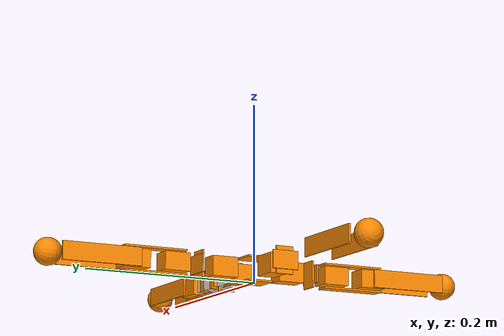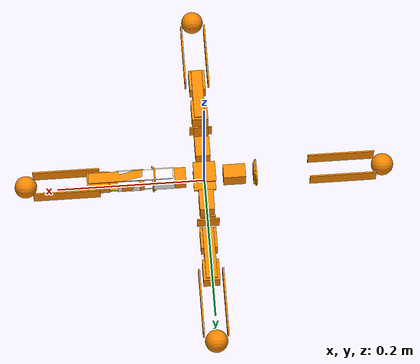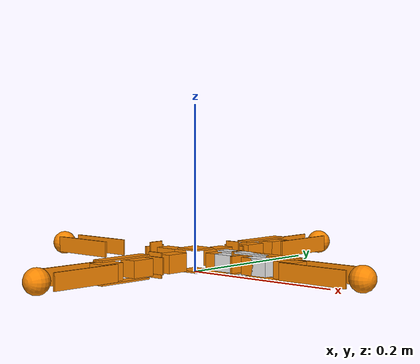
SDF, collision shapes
<sdf version="1.6">
<model name="onshape">
<link name="body_1">
<frame name="body_1_frame"><pose>0 0 0 0 -0 0</pose></frame>
<visual name="body_1_0_body_visual">
<pose>0 0 0 0 -0 0</pose>
<geometry>
<mesh><uri>package://body.stl</uri></mesh>
</geometry>
<material><ambient>0.972549 0.529412 0.00392157 1</ambient><diffuse>0.972549 0.529412 0.00392157 1</diffuse><specular>0.1 0.1 0.1 1</specular><emissive>0 0 0 0</emissive></material>
</visual>
<collision name="body_1_0_body_collision_1">
<pose>0 0 0.0011 0 -0 0</pose>
<geometry>
<box><size>0.03 0.03 0.002</size></box>
</geometry>
</collision>
<visual name="body_1_1_horn_visual">
<pose>3.46945e-18 -0.0485 0.0143 0 -0 1.49355</pose>
<geometry>
<mesh><uri>package://horn.stl</uri></mesh>
</geometry>
<material><ambient>0.917647 0.917647 0.917647 1</ambient><diffuse>0.917647 0.917647 0.917647 1</diffuse><specular>0.1 0.1 0.1 1</specular><emissive>0 0 0 0</emissive></material>
</visual>
<visual name="body_1_2_motor_visual">
<pose>0.0485 4.33681e-18 0.0143 0 -0 -1.5708</pose>
<geometry>
<mesh><uri>package://motor.stl</uri></mesh>
</geometry>
<material><ambient>0.470588 0.470588 0.470588 1</ambient><diffuse>0.470588 0.470588 0.470588 1</diffuse><specular>0.1 0.1 0.1 1</specular><emissive>0 0 0 0</emissive></material>
</visual>
<collision name="body_1_2_motor_collision_1">
<pose>0.0405 4.33681e-18 0.0143 0 -0 -1.5708</pose>
<geometry>
<box><size>0.02 0.03 0.022</size></box>
</geometry>
</collision>
<visual name="body_1_3_motor_visual">
<pose>-0.0485 2.56739e-16 0.0143 6.87729e-22 3.74562e-16 1.5708</pose>
<geometry>
<mesh><uri>package://motor.stl</uri></mesh>
</geometry>
<material><ambient>0.470588 0.470588 0.470588 1</ambient><diffuse>0.470588 0.470588 0.470588 1</diffuse><specular>0.1 0.1 0.1 1</specular><emissive>0 0 0 0</emissive></material>
</visual>
<collision name="body_1_3_motor_collision_1">
<pose>-0.0405 2.57627e-16 0.0143 6.87729e-22 3.74562e-16 1.5708</pose>
<geometry>
<box><size>0.02 0.03 0.022</size></box>
</geometry>
</collision>
<visual name="body_1_4_horn_visual">
<pose>0.0485 -1.94242e-17 0.0143 0 -0 1.45228</pose>
<geometry>
<mesh><uri>package://horn.stl</uri></mesh>
</geometry>
<material><ambient>0.917647 0.917647 0.917647 1</ambient><diffuse>0.917647 0.917647 0.917647 1</diffuse><specular>0.1 0.1 0.1 1</specular><emissive>0 0 0 0</emissive></material>
</visual>
<visual name="body_1_5_horn_visual">
<pose>-0.0485 6.93889e-17 0.0143 0 -0 1.49355</pose>
<geometry>
<mesh><uri>package://horn.stl</uri></mesh>
</geometry>
<material><ambient>0.917647 0.917647 0.917647 1</ambient><diffuse>0.917647 0.917647 0.917647 1</diffuse><specular>0.1 0.1 0.1 1</specular><emissive>0 0 0 0</emissive></material>
</visual>
<visual name="body_1_6_motor_visual">
<pose>-9.54098e-18 0.0485 0.0143 0 -0 8.32667e-16</pose>
<geometry>
<mesh><uri>package://motor.stl</uri></mesh>
</geometry>
<material><ambient>0.470588 0.470588 0.470588 1</ambient><diffuse>0.470588 0.470588 0.470588 1</diffuse><specular>0.1 0.1 0.1 1</specular><emissive>0 0 0 0</emissive></material>
</visual>
<collision name="body_1_6_motor_collision_1">
<pose>-2.87964e-18 0.0405 0.0143 0 -0 8.32667e-16</pose>
<geometry>
<box><size>0.02 0.03 0.022</size></box>
</geometry>
</collision>
<visual name="body_1_7_body_visual">
<pose>0 3.46945e-18 0.0286 3.14159 -0 0</pose>
<geometry>
<mesh><uri>package://body.stl</uri></mesh>
</geometry>
<material><ambient>0.972549 0.529412 0.00392157 1</ambient><diffuse>0.972549 0.529412 0.00392157 1</diffuse><specular>0.1 0.1 0.1 1</specular><emissive>0 0 0 0</emissive></material>
</visual>
<collision name="body_1_7_body_collision_1">
<pose>0 3.46945e-18 0.0275 3.14159 -0 0</pose>
<geometry>
<box><size>0.03 0.03 0.002</size></box>
</geometry>
</collision>
<visual name="body_1_8_motor_visual">
<pose>1.73472e-18 -0.0485 0.0143 0 -0 -3.14159</pose>
<geometry>
<mesh><uri>package://motor.stl</uri></mesh>
</geometry>
<material><ambient>0.470588 0.470588 0.470588 1</ambient><diffuse>0.470588 0.470588 0.470588 1</diffuse><specular>0.1 0.1 0.1 1</specular><emissive>0 0 0 0</emissive></material>
</visual>
<collision name="body_1_8_motor_collision_1">
<pose>1.24486e-18 -0.0405 0.0143 0 -0 -3.14159</pose>
<geometry>
<box><size>0.02 0.03 0.022</size></box>
</geometry>
</collision>
<visual name="body_1_9_horn_visual">
<pose>-9.66308e-18 0.0485 0.0143 0 -0 1.49355</pose>
<geometry>
<mesh><uri>package://horn.stl</uri></mesh>
</geometry>
<material><ambient>0.917647 0.917647 0.917647 1</ambient><diffuse>0.917647 0.917647 0.917647 1</diffuse><specular>0.1 0.1 0.1 1</specular><emissive>0 0 0 0</emissive></material>
</visual>
<inertial>
<pose frame="body_1_frame">-1.59281e-16 6.414e-17 0.0143384 0 0 0</pose>
<mass>0.0808736</mass>
<inertia><ixx>7.37408e-05</ixx><ixy>1.86671e-19</ixy><ixz>-1.67366e-21</ixz><iyy>7.37408e-05</iyy><iyz>-1.90582e-21</iyz><izz>0.000135878</izz></inertia>
</inertial>
</link>

<link name="trunk">
<pose>0 0 0 0 0 0</pose>
<inertial>
<pose>0 0 0 0 0 0</pose>
<mass>1e-9</mass>
<inertia>
<ixx>0</ixx><ixy>0</ixy><ixz>0</ixz><iyy>0</iyy><iyz>0</iyz><izz>0</izz>
</inertia>
</inertial>
</link>
<joint name="trunk_frame" type="floating">
<pose>-1.46437e-18 8.91964e-20 0.0148 0 -0 0</pose>
<parent>body_1</parent>
<child>trunk</child>
</joint>

<link name="doubleu_1">
<frame name="doubleu_1_frame"><pose>0 0 0 0 -0 0</pose></frame>
<visual name="doubleu_1_0_u_visual">
<pose>-0.0665 2.5327e-16 0.01545 -1.5708 3.03402e-16 1.5708</pose>
<geometry>
<mesh><uri>package://u.stl</uri></mesh>
</geometry>
<material><ambient>0.972549 0.529412 0.00392157 1</ambient><diffuse>0.972549 0.529412 0.00392157 1</diffuse><specular>0.1 0.1 0.1 1</specular><emissive>0 0 0 0</emissive></material>
</visual>
<collision name="doubleu_1_0_u_collision_1">
<pose>-0.0676 2.53086e-16 0.01545 -1.5708 3.03402e-16 1.5708</pose>
<geometry>
<box><size>0.02 0.03 0.002</size></box>
</geometry>
</collision>
<visual name="doubleu_1_1_u_visual">
<pose>-0.0711 2.77556e-16 0.01545 -2.22045e-16 1.5708 0</pose>
<geometry>
<mesh><uri>package://u.stl</uri></mesh>
</geometry>
<material><ambient>0.972549 0.529412 0.00392157 1</ambient><diffuse>0.972549 0.529412 0.00392157 1</diffuse><specular>0.1 0.1 0.1 1</specular><emissive>0 0 0 0</emissive></material>
</visual>
<collision name="doubleu_1_1_u_collision_1">
<pose>-0.07 2.778e-16 0.01545 -2.22045e-16 1.5708 0</pose>
<geometry>
<box><size>0.02 0.03 0.002</size></box>
</geometry>
</collision>
<inertial>
<pose frame="doubleu_1_frame">-0.0688 2.69024e-16 0.01545 0 0 0</pose>
<mass>0.00830698</mass>
<inertia><ixx>1.53589e-06</ixx><ixy>1.39891e-21</ixy><ixz>-4.33802e-22</ixz><iyy>2.49451e-06</iyy><iyz>-1.99352e-22</iyz><izz>3.46232e-06</izz></inertia>
</inertial>
</link>

<link name="platesblock_1">
<pose>0.2 0 0 0 0 0</pose>
<frame name="platesblock_1_frame"><pose>0 0 0 0 -0 0</pose></frame>
<visual name="platesblock_1_0_horn_visual">
<pose>-0.1521 2.5327e-16 0.01545 -1.5708 -0.986922 3.14159</pose>
<geometry>
<mesh><uri>package://horn.stl</uri></mesh>
</geometry>
<material><ambient>0.917647 0.917647 0.917647 1</ambient><diffuse>0.917647 0.917647 0.917647 1</diffuse><specular>0.1 0.1 0.1 1</specular><emissive>0 0 0 0</emissive></material>
</visual>
<visual name="platesblock_1_1_horn_visual">
<pose>-0.0891 -2.08167e-17 0.01545 1.5708 1.5708 0</pose>
<geometry>
<mesh><uri>package://horn.stl</uri></mesh>
</geometry>
<material><ambient>0.917647 0.917647 0.917647 1</ambient><diffuse>0.917647 0.917647 0.917647 1</diffuse><specular>0.1 0.1 0.1 1</specular><emissive>0 0 0 0</emissive></material>
</visual>
<visual name="platesblock_1_2_motor_visual">
<pose>-0.1521 -2.04697e-17 0.01545 1.5708 -1.5708 0</pose>
<geometry>
<mesh><uri>package://motor.stl</uri></mesh>
</geometry>
<material><ambient>0.470588 0.470588 0.470588 1</ambient><diffuse>0.470588 0.470588 0.470588 1</diffuse><specular>0.1 0.1 0.1 1</specular><emissive>0 0 0 0</emissive></material>
</visual>
<collision name="platesblock_1_2_motor_collision_1">
<pose>-0.1441 -2.93871e-17 0.01545 1.5708 -1.5708 0</pose>
<geometry>
<box><size>0.02 0.03 0.022</size></box>
</geometry>
</collision>
<visual name="platesblock_1_3_motor_visual">
<pose>-0.0891 -8.67362e-17 0.01545 1.5708 1.5708 0</pose>
<geometry>
<mesh><uri>package://motor.stl</uri></mesh>
</geometry>
<material><ambient>0.470588 0.470588 0.470588 1</ambient><diffuse>0.470588 0.470588 0.470588 1</diffuse><specular>0.1 0.1 0.1 1</specular><emissive>0 0 0 0</emissive></material>
</visual>
<collision name="platesblock_1_3_motor_collision_1">
<pose>-0.0971 -8.66266e-17 0.01545 1.5708 1.5708 0</pose>
<geometry>
<box><size>0.02 0.03 0.022</size></box>
</geometry>
</collision>
<visual name="platesblock_1_4_plate_visual">
<pose>-0.0831 -1.14492e-16 0.00115 1.02716e-15 1.55431e-15 3.14159</pose>
<geometry>
<mesh><uri>package://plate.stl</uri></mesh>
</geometry>
<material><ambient>0.972549 0.529412 0.00392157 1</ambient><diffuse>0.972549 0.529412 0.00392157 1</diffuse><specular>0.1 0.1 0.1 1</specular><emissive>0 0 0 0</emissive></material>
</visual>
<collision name="platesblock_1_4_plate_collision_1">
<pose>-0.1206 -6.77443e-17 0.00235 1.02716e-15 1.55431e-15 3.14159</pose>
<geometry>
<box><size>0.073 0.015 0.002</size></box>
</geometry>
</collision>
<visual name="platesblock_1_5_plate_visual">
<pose>-0.0831 3.46945e-18 0.02745 7.41349e-16 1.38778e-15 3.14159</pose>
<geometry>
<mesh><uri>package://plate.stl</uri></mesh>
</geometry>
<material><ambient>0.972549 0.529412 0.00392157 1</ambient><diffuse>0.972549 0.529412 0.00392157 1</diffuse><specular>0.1 0.1 0.1 1</specular><emissive>0 0 0 0</emissive></material>
</visual>
<collision name="platesblock_1_5_plate_collision_1">
<pose>-0.1206 1.01989e-17 0.02865 7.41349e-16 1.38778e-15 3.14159</pose>
<geometry>
<box><size>0.073 0.015 0.002</size></box>
</geometry>
</collision>
<inertial>
<pose frame="platesblock_1_frame">-0.1206 -3.71788e-05 0.01545 0 0 0</pose>
<mass>0.0417755</mass>
<inertia><ixx>5.63169e-06</ixx><ixy>-5.60048e-09</ixy><ixz>1.86781e-12</ixz><iyy>3.05137e-05</iyy><iyz>-4.68143e-21</iyz><izz>2.82895e-05</izz></inertia>
</inertial>
</link>

<link name="leg_1">
<frame name="leg_1_frame"><pose>0 0 0 0 -0 0</pose></frame>
<visual name="leg_1_0_leg_visual">
<pose>-0.1521 2.60209e-16 0.01545 3.14159 -1.5708 0</pose>
<geometry>
<mesh><uri>package://leg.stl</uri></mesh>
</geometry>
<material><ambient>0.972549 0.529412 0.00392157 1</ambient><diffuse>0.972549 0.529412 0.00392157 1</diffuse><specular>0.1 0.1 0.1 1</specular><emissive>0 0 0 0</emissive></material>
</visual>
<collision name="leg_1_0_leg_collision_1">
<pose>-0.1871 0.016 0.01545 3.14159 -1.5708 0</pose>
<geometry>
<box><size>0.02 0.002 0.09</size></box>
</geometry>
</collision>
<collision name="leg_1_0_leg_collision_2">
<pose>-0.1871 -0.016 0.01545 3.14159 -1.5708 0</pose>
<geometry>
<box><size>0.02 0.002 0.09</size></box>
</geometry>
</collision>
<collision name="leg_1_0_leg_collision_3">
<pose>-0.2421 2.93227e-16 0.01545 3.14159 -1.5708 0</pose>
<geometry>
<sphere><radius>0.015</radius></sphere>
</geometry>
</collision>
<inertial>
<pose frame="leg_1_frame">-0.205479 2.94423e-16 0.01545 0 0 0</pose>
<mass>0.0154162</mass>
<inertia><ixx>3.58407e-06</ixx><ixy>-6.36999e-22</ixy><ixz>5.5435e-21</ixz><iyy>1.88204e-05</iyy><iyz>-1.43334e-21</iyz><izz>2.13816e-05</izz></inertia>
</inertial>
</link>

<joint name="leg1_c" type="revolute">
<pose>-0.1521 0.015 0.01545 3.14159 -1.5708 0</pose>
<parent>platesblock_1</parent>
<child>leg_1</child>
<axis>
<xyz>0 1 0</xyz>
<limit><effort>1</effort><velocity>20</velocity></limit>
</axis>
</joint>

<joint name="leg1_b" type="revolute">
<pose>-0.0891 0.015 0.01545 1.5708 1.5708 0</pose>
<parent>doubleu_1</parent>
<child>platesblock_1</child>
<axis>
<xyz>0 0 1</xyz>
<limit><effort>1</effort><velocity>20</velocity></limit>
</axis>
</joint>

<joint name="leg1_a" type="revolute">
<pose>-0.0485 2.51367e-16 -0.0007 -1.5708 3.03402e-16 1.5708</pose>
<parent>body_1</parent>
<child>doubleu_1</child>
<axis>
<xyz>0 1 0</xyz>
<limit><effort>1</effort><velocity>20</velocity></limit>
</axis>
</joint>

<link name="doubleu_2">
<frame name="doubleu_2_frame"><pose>0 0 0 0 -0 0</pose></frame>
<visual name="doubleu_2_0_u_visual">
<pose>-3.03577e-18 -0.0665 0.0143 -1.5708 5.02497e-24 -3.14159</pose>
<geometry>
<mesh><uri>package://u.stl</uri></mesh>
</geometry>
<material><ambient>0.972549 0.529412 0.00392157 1</ambient><diffuse>0.972549 0.529412 0.00392157 1</diffuse><specular>0.1 0.1 0.1 1</specular><emissive>0 0 0 0</emissive></material>
</visual>
<collision name="doubleu_2_0_u_collision_1">
<pose>-2.98997e-18 -0.0676 0.0143 -1.5708 5.02497e-24 -3.14159</pose>
<geometry>
<box><size>0.02 0.03 0.002</size></box>
</geometry>
</collision>
<visual name="doubleu_2_1_u_visual">
<pose>-6.57027e-17 -0.0711 0.0143 -1.5708 1.5708 0</pose>
<geometry>
<mesh><uri>package://u.stl</uri></mesh>
</geometry>
<material><ambient>0.972549 0.529412 0.00392157 1</ambient><diffuse>0.972549 0.529412 0.00392157 1</diffuse><specular>0.1 0.1 0.1 1</specular><emissive>0 0 0 0</emissive></material>
</visual>
<collision name="doubleu_2_1_u_collision_1">
<pose>-6.57637e-17 -0.07 0.0143 -1.5708 1.5708 0</pose>
<geometry>
<box><size>0.02 0.03 0.002</size></box>
</geometry>
</collision>
<inertial>
<pose frame="doubleu_2_frame">-3.81567e-17 -0.0688 0.0143 0 0 0</pose>
<mass>0.00830698</mass>
<inertia><ixx>3.17322e-06</ixx><ixy>-2.96433e-21</ixy><ixz>-1.23602e-23</ixz><iyy>2.2146e-06</iyy><iyz>5.14452e-23</iyz><izz>2.1049e-06</izz></inertia>
</inertial>
</link>

<link name="platesblock_2">
<frame name="platesblock_2_frame"><pose>0 0 0 0 -0 0</pose></frame>
<visual name="platesblock_2_0_plate_visual">
<pose>3.68195e-16 -0.0831 0.0263 1.93307e-16 5.54916e-17 -1.5708</pose>
<geometry>
<mesh><uri>package://plate.stl</uri></mesh>
</geometry>
<material><ambient>0.972549 0.529412 0.00392157 1</ambient><diffuse>0.972549 0.529412 0.00392157 1</diffuse><specular>0.1 0.1 0.1 1</specular><emissive>0 0 0 0</emissive></material>
</visual>
<collision name="platesblock_2_0_plate_collision_1">
<pose>4.26687e-16 -0.1206 0.0275 1.93307e-16 5.54916e-17 -1.5708</pose>
<geometry>
<box><size>0.073 0.015 0.002</size></box>
</geometry>
</collision>
<visual name="platesblock_2_1_plate_visual">
<pose>1.97758e-16 -0.0831 -1.55084e-15 3.54195e-16 8.32648e-16 -1.5708</pose>
<geometry>
<mesh><uri>package://plate.stl</uri></mesh>
</geometry>
<material><ambient>0.972549 0.529412 0.00392157 1</ambient><diffuse>0.972549 0.529412 0.00392157 1</diffuse><specular>0.1 0.1 0.1 1</specular><emissive>0 0 0 0</emissive></material>
</visual>
<collision name="platesblock_2_1_plate_collision_1">
<pose>1.61795e-16 -0.1206 0.0012 3.54195e-16 8.32648e-16 -1.5708</pose>
<geometry>
<box><size>0.073 0.015 0.002</size></box>
</geometry>
</collision>
<visual name="platesblock_2_2_horn_visual">
<pose>3.21488e-16 -0.1521 0.0143 -1.5708 -1.26624 -1.5708</pose>
<geometry>
<mesh><uri>package://horn.stl</uri></mesh>
</geometry>
<material><ambient>0.917647 0.917647 0.917647 1</ambient><diffuse>0.917647 0.917647 0.917647 1</diffuse><specular>0.1 0.1 0.1 1</specular><emissive>0 0 0 0</emissive></material>
</visual>
<visual name="platesblock_2_3_horn_visual">
<pose>1.77375e-16 -0.0891 0.0143 1.5708 -3.00181e-16 1.5708</pose>
<geometry>
<mesh><uri>package://horn.stl</uri></mesh>
</geometry>
<material><ambient>0.917647 0.917647 0.917647 1</ambient><diffuse>0.917647 0.917647 0.917647 1</diffuse><specular>0.1 0.1 0.1 1</specular><emissive>0 0 0 0</emissive></material>
</visual>
<visual name="platesblock_2_4_motor_visual">
<pose>3.04574e-16 -0.1521 0.0143 3.14159 -1.5708 0</pose>
<geometry>
<mesh><uri>package://motor.stl</uri></mesh>
</geometry>
<material><ambient>0.470588 0.470588 0.470588 1</ambient><diffuse>0.470588 0.470588 0.470588 1</diffuse><specular>0.1 0.1 0.1 1</specular><emissive>0 0 0 0</emissive></material>
</visual>
<collision name="platesblock_2_4_motor_collision_1">
<pose>3.28814e-16 -0.1441 0.0143 3.14159 -1.5708 0</pose>
<geometry>
<box><size>0.02 0.03 0.022</size></box>
</geometry>
</collision>
<visual name="platesblock_2_5_motor_visual">
<pose>1.82146e-16 -0.0891 0.0143 -1.66533e-16 1.5708 0</pose>
<geometry>
<mesh><uri>package://motor.stl</uri></mesh>
</geometry>
<material><ambient>0.470588 0.470588 0.470588 1</ambient><diffuse>0.470588 0.470588 0.470588 1</diffuse><specular>0.1 0.1 0.1 1</specular><emissive>0 0 0 0</emissive></material>
</visual>
<collision name="platesblock_2_5_motor_collision_1">
<pose>1.74596e-16 -0.0971 0.0143 -1.66533e-16 1.5708 0</pose>
<geometry>
<box><size>0.02 0.03 0.022</size></box>
</geometry>
</collision>
<inertial>
<pose frame="platesblock_2_frame">3.71788e-05 -0.1206 0.0143 0 0 0</pose>
<mass>0.0417755</mass>
<inertia><ixx>2.99696e-05</ixx><ixy>1.23769e-07</ixy><ixz>-1.21995e-20</ixz><iyy>4.63737e-06</iyy><iyz>1.86781e-12</iyz><izz>2.98279e-05</izz></inertia>
</inertial>
</link>

<link name="leg_2">
<frame name="leg_2_frame"><pose>1 0 0 0 -0 0</pose></frame>
<visual name="leg_2_0_leg_visual">
<pose>1.82276e-16 -0.1521 0.0143 -1.5708 -1.5708 0</pose>
<geometry>
<mesh><uri>package://leg.stl</uri></mesh>
</geometry>
<material><ambient>0.972549 0.529412 0.00392157 1</ambient><diffuse>0.972549 0.529412 0.00392157 1</diffuse><specular>0.1 0.1 0.1 1</specular><emissive>0 0 0 0</emissive></material>
</visual>
<collision name="leg_2_0_leg_collision_1">
<pose>-0.016 -0.1871 0.0143 -1.5708 -1.5708 0</pose>
<geometry>
<box><size>0.02 0.002 0.09</size></box>
</geometry>
</collision>
<collision name="leg_2_0_leg_collision_2">
<pose>0.016 -0.1871 0.0143 -1.5708 -1.5708 0</pose>
<geometry>
<box><size>0.02 0.002 0.09</size></box>
</geometry>
</collision>
<collision name="leg_2_0_leg_collision_3">
<pose>5.1126e-16 -0.2421 0.0143 -1.5708 -1.5708 0</pose>
<geometry>
<sphere><radius>0.015</radius></sphere>
</geometry>
</collision>
<inertial>
<pose frame="leg_2_frame">3.62764e-16 -0.205479 0.0143 0 0 0</pose>
<mass>0.0154162</mass>
<inertia><ixx>3.58407e-06</ixx><ixy>-1.31196e-20</ixy><ixz>6.92902e-21</ixz><iyy>2.13816e-05</iyy><iyz>-1.36228e-19</iyz><izz>1.88204e-05</izz></inertia>
</inertial>
</link>

<joint name="leg2_c" type="revolute">
<pose>-0.015 -0.1521 0.0143 -1.5708 -1.5708 0</pose>
<parent>platesblock_2</parent>
<child>leg_2</child>
<axis>
<xyz>0 1 0</xyz>
<limit><effort>1</effort><velocity>20</velocity></limit>
</axis>
</joint>

<joint name="leg2_b" type="revolute">
<pose>-0.015 -0.0891 0.0143 1.5708 -3.00181e-16 1.5708</pose>
<parent>doubleu_2</parent>
<child>platesblock_2</child>
<axis>
<xyz>0 0 1</xyz>
<limit><effort>1</effort><velocity>20</velocity></limit>
</axis>
</joint>

<joint name="leg2_a" type="revolute">
<pose>-3.78517e-18 -0.0485 -0.0007 -1.5708 5.02497e-24 -3.14159</pose>
<parent>body_1</parent>
<child>doubleu_2</child>
<axis>
<xyz>0 1 0</xyz>
<limit><effort>1</effort><velocity>20</velocity></limit>
</axis>
</joint>

<link name="doubleu_3">
<frame name="doubleu_3_frame"><pose>0 0 0 0 -0 0</pose></frame>
<visual name="doubleu_3_0_u_visual">
<pose>0.0711 1.21431e-17 0.01545 -6.11483e-32 -1.5708 0</pose>
<geometry>
<mesh><uri>package://u.stl</uri></mesh>
</geometry>
<material><ambient>0.972549 0.529412 0.00392157 1</ambient><diffuse>0.972549 0.529412 0.00392157 1</diffuse><specular>0.1 0.1 0.1 1</specular><emissive>0 0 0 0</emissive></material>
</visual>
<collision name="doubleu_3_0_u_collision_1">
<pose>0.07 1.21431e-17 0.01545 -6.11483e-32 -1.5708 0</pose>
<geometry>
<box><size>0.02 0.03 0.002</size></box>
</geometry>
</collision>
<visual name="doubleu_3_1_u_visual">
<pose>0.0665 5.20417e-18 0.01545 1.5708 -4.93038e-32 1.5708</pose>
<geometry>
<mesh><uri>package://u.stl</uri></mesh>
</geometry>
<material><ambient>0.972549 0.529412 0.00392157 1</ambient><diffuse>0.972549 0.529412 0.00392157 1</diffuse><specular>0.1 0.1 0.1 1</specular><emissive>0 0 0 0</emissive></material>
</visual>
<collision name="doubleu_3_1_u_collision_1">
<pose>0.0676 5.20417e-18 0.01545 1.5708 -4.93038e-32 1.5708</pose>
<geometry>
<box><size>0.02 0.03 0.002</size></box>
</geometry>
</collision>
<inertial>
<pose frame="doubleu_3_frame">0.0688 1.25197e-17 0.01545 0 0 0</pose>
<mass>0.00830698</mass>
<inertia><ixx>1.53589e-06</ixx><ixy>-1.98875e-22</ixy><ixz>-3.87004e-22</ixz><iyy>2.49451e-06</iyy><iyz>1.73729e-23</iyz><izz>3.46232e-06</izz></inertia>
</inertial>
</link>

<link name="platesblock_3">
<frame name="platesblock_3_frame"><pose>0 0 0 0 -0 0</pose></frame>
<visual name="platesblock_3_0_plate_visual">
<pose>0.0831 -2.22045e-16 0.02745 1.04043e-15 -8.88178e-16 -6.93889e-17</pose>
<geometry>
<mesh><uri>package://plate.stl</uri></mesh>
</geometry>
<material><ambient>0.972549 0.529412 0.00392157 1</ambient><diffuse>0.972549 0.529412 0.00392157 1</diffuse><specular>0.1 0.1 0.1 1</specular><emissive>0 0 0 0</emissive></material>
</visual>
<collision name="platesblock_3_0_plate_collision_1">
<pose>0.1206 -2.2587e-16 0.02865 1.04043e-15 -8.88178e-16 -6.93889e-17</pose>
<geometry>
<box><size>0.073 0.015 0.002</size></box>
</geometry>
</collision>
<visual name="platesblock_3_1_motor_visual">
<pose>0.1521 -2.89699e-17 0.01545 -1.5708 -1.5708 0</pose>
<geometry>
<mesh><uri>package://motor.stl</uri></mesh>
</geometry>
<material><ambient>0.470588 0.470588 0.470588 1</ambient><diffuse>0.470588 0.470588 0.470588 1</diffuse><specular>0.1 0.1 0.1 1</specular><emissive>0 0 0 0</emissive></material>
</visual>
<collision name="platesblock_3_1_motor_collision_1">
<pose>0.1441 -3.87028e-17 0.01545 -1.5708 -1.5708 0</pose>
<geometry>
<box><size>0.02 0.03 0.022</size></box>
</geometry>
</collision>
<visual name="platesblock_3_2_motor_visual">
<pose>0.0891 -1.9082e-17 0.01545 -1.5708 1.5708 0</pose>
<geometry>
<mesh><uri>package://motor.stl</uri></mesh>
</geometry>
<material><ambient>0.470588 0.470588 0.470588 1</ambient><diffuse>0.470588 0.470588 0.470588 1</diffuse><specular>0.1 0.1 0.1 1</specular><emissive>0 0 0 0</emissive></material>
</visual>
<collision name="platesblock_3_2_motor_collision_1">
<pose>0.0971 -1.77497e-17 0.01545 -1.5708 1.5708 0</pose>
<geometry>
<box><size>0.02 0.03 0.022</size></box>
</geometry>
</collision>
<visual name="platesblock_3_3_horn_visual">
<pose>0.1521 -1.42247e-17 0.01545 -1.5708 -0.0772446 1.41089e-15</pose>
<geometry>
<mesh><uri>package://horn.stl</uri></mesh>
</geometry>
<material><ambient>0.917647 0.917647 0.917647 1</ambient><diffuse>0.917647 0.917647 0.917647 1</diffuse><specular>0.1 0.1 0.1 1</specular><emissive>0 0 0 0</emissive></material>
</visual>
<visual name="platesblock_3_4_plate_visual">
<pose>0.0831 6.93889e-18 0.00115 4.64812e-16 1.66533e-16 -5.41234e-16</pose>
<geometry>
<mesh><uri>package://plate.stl</uri></mesh>
</geometry>
<material><ambient>0.972549 0.529412 0.00392157 1</ambient><diffuse>0.972549 0.529412 0.00392157 1</diffuse><specular>0.1 0.1 0.1 1</specular><emissive>0 0 0 0</emissive></material>
</visual>
<collision name="platesblock_3_4_plate_collision_1">
<pose>0.1206 -1.39043e-17 0.00235 4.64812e-16 1.66533e-16 -5.41234e-16</pose>
<geometry>
<box><size>0.073 0.015 0.002</size></box>
</geometry>
</collision>
<visual name="platesblock_3_5_horn_visual">
<pose>0.0891 1.00614e-16 0.01545 1.5708 -2.38367e-17 -3.14159</pose>
<geometry>
<mesh><uri>package://horn.stl</uri></mesh>
</geometry>
<material><ambient>0.917647 0.917647 0.917647 1</ambient><diffuse>0.917647 0.917647 0.917647 1</diffuse><specular>0.1 0.1 0.1 1</specular><emissive>0 0 0 0</emissive></material>
</visual>
<inertial>
<pose frame="platesblock_3_frame">0.1206 3.71788e-05 0.01545 0 0 0</pose>
<mass>0.0417755</mass>
<inertia><ixx>5.61111e-06</ixx><ixy>-9.37348e-10</ixy><ixz>-1.86781e-12</ixz><iyy>3.05342e-05</iyy><iyz>7.78364e-21</iyz><izz>2.82895e-05</izz></inertia>
</inertial>
</link>

<link name="leg_3">
<frame name="leg_3_frame"><pose>0 0 0 0 -0 0</pose></frame>
<visual name="leg_3_0_leg_visual">
<pose>0.1521 -5.75928e-17 0.01545 1.39792e-15 -1.5708 0</pose>
<geometry>
<mesh><uri>package://leg.stl</uri></mesh>
</geometry>
<material><ambient>0.972549 0.529412 0.00392157 1</ambient><diffuse>0.972549 0.529412 0.00392157 1</diffuse><specular>0.1 0.1 0.1 1</specular><emissive>0 0 0 0</emissive></material>
</visual>
<collision name="leg_3_0_leg_collision_1">
<pose>0.1871 -0.016 0.01545 1.39792e-15 -1.5708 0</pose>
<geometry>
<box><size>0.02 0.002 0.09</size></box>
</geometry>
</collision>
<collision name="leg_3_0_leg_collision_2">
<pose>0.1871 0.016 0.01545 1.39792e-15 -1.5708 0</pose>
<geometry>
<box><size>0.02 0.002 0.09</size></box>
</geometry>
</collision>
<collision name="leg_3_0_leg_collision_3">
<pose>0.2421 6.82203e-17 0.01545 1.39792e-15 -1.5708 0</pose>
<geometry>
<sphere><radius>0.015</radius></sphere>
</geometry>
</collision>
<inertial>
<pose frame="leg_3_frame">0.205479 2.39557e-18 0.01545 0 0 0</pose>
<mass>0.0154162</mass>
<inertia><ixx>3.58407e-06</ixx><ixy>-9.57745e-21</ixy><ixz>1.78406e-20</ixz><iyy>1.88204e-05</iyy><iyz>8.90741e-22</iyz><izz>2.13816e-05</izz></inertia>
</inertial>
</link>

<link name="tip">
<pose>0 0 0 0 0 0</pose>
<inertial>
<pose>0 0 0 0 0 0</pose>
<mass>1e-9</mass>
<inertia>
<ixx>0</ixx><ixy>0</ixy><ixz>0</ixz><iyy>0</iyy><iyz>0</iyz><izz>0</izz>
</inertia>
</inertial>
</link>
<joint name="tip_frame" type="floating">
<pose>0.2526 8.63986e-17 0.01795 4.51646e-16 3.10862e-15 1.39792e-15</pose>
<parent>leg_3</parent>
<child>tip</child>
</joint>

<joint name="leg3_c" type="revolute">
<pose>0.1521 -0.015 0.01545 1.39792e-15 -1.5708 0</pose>
<parent>platesblock_3</parent>
<child>leg_3</child>
<axis>
<xyz>0 1 0</xyz>
<limit><effort>1</effort><velocity>20</velocity></limit>
</axis>
</joint>

<joint name="leg3_b" type="revolute">
<pose>0.0891 -0.015 0.01545 1.5708 -2.38367e-17 -3.14159</pose>
<parent>doubleu_3</parent>
<child>platesblock_3</child>
<axis>
<xyz>0 0 1</xyz>
<limit><effort>1</effort><velocity>20</velocity></limit>
</axis>
</joint>

<joint name="leg3_a" type="revolute">
<pose>0.0485 5.20417e-18 -0.0007 1.5708 -4.93038e-32 1.5708</pose>
<parent>body_1</parent>
<child>doubleu_3</child>
<axis>
<xyz>0 -1 0</xyz>
<limit><effort>1</effort><velocity>20</velocity></limit>
</axis>
</joint>

<link name="doubleu_4">
<frame name="doubleu_4_frame"><pose>0 0 0 0 -0 0</pose></frame>
<visual name="doubleu_4_0_u_visual">
<pose>-2.47198e-17 0.0665 0.01545 1.5708 5.00173e-19 -3.14159</pose>
<geometry>
<mesh><uri>package://u.stl</uri></mesh>
</geometry>
<material><ambient>0.972549 0.529412 0.00392157 1</ambient><diffuse>0.972549 0.529412 0.00392157 1</diffuse><specular>0.1 0.1 0.1 1</specular><emissive>0 0 0 0</emissive></material>
</visual>
<collision name="doubleu_4_0_u_collision_1">
<pose>-2.56357e-17 0.0676 0.01545 1.5708 5.00173e-19 -3.14159</pose>
<geometry>
<box><size>0.02 0.03 0.002</size></box>
</geometry>
</collision>
<visual name="doubleu_4_1_u_visual">
<pose>-6.93889e-17 0.0711 0.01545 1.5708 -1.5708 0</pose>
<geometry>
<mesh><uri>package://u.stl</uri></mesh>
</geometry>
<material><ambient>0.972549 0.529412 0.00392157 1</ambient><diffuse>0.972549 0.529412 0.00392157 1</diffuse><specular>0.1 0.1 0.1 1</specular><emissive>0 0 0 0</emissive></material>
</visual>
<collision name="doubleu_4_1_u_collision_1">
<pose>-6.84883e-17 0.07 0.01545 1.5708 -1.5708 0</pose>
<geometry>
<box><size>0.02 0.03 0.002</size></box>
</geometry>
</collision>
<inertial>
<pose frame="doubleu_4_frame">-5.08419e-17 0.0688 0.01545 0 0 0</pose>
<mass>0.00830698</mass>
<inertia><ixx>3.17322e-06</ixx><ixy>2.56001e-21</ixy><ixz>5.96951e-22</ixz><iyy>2.2146e-06</iyy><iyz>-8.41455e-22</iyz><izz>2.1049e-06</izz></inertia>
</inertial>
</link>

<link name="platesblock_4">
<frame name="platesblock_4_frame"><pose>0 0 0 0 -0 0</pose></frame>
<visual name="platesblock_4_0_plate_visual">
<pose>0.0015 0.0831 0.02745 9.72814e-16 -6.77544e-21 1.5708</pose>
<geometry>
<mesh><uri>package://plate.stl</uri></mesh>
</geometry>
<material><ambient>0.972549 0.529412 0.00392157 1</ambient><diffuse>0.972549 0.529412 0.00392157 1</diffuse><specular>0.1 0.1 0.1 1</specular><emissive>0 0 0 0</emissive></material>
</visual>
<collision name="platesblock_4_0_plate_collision_1">
<pose>0.0015 0.1206 0.02865 9.72814e-16 -6.77544e-21 1.5708</pose>
<geometry>
<box><size>0.073 0.015 0.002</size></box>
</geometry>
</collision>
<visual name="platesblock_4_1_plate_visual">
<pose>0.0015 0.0831 0.00115 3.77624e-16 -6.10629e-16 1.5708</pose>
<geometry>
<mesh><uri>package://plate.stl</uri></mesh>
</geometry>
<material><ambient>0.972549 0.529412 0.00392157 1</ambient><diffuse>0.972549 0.529412 0.00392157 1</diffuse><specular>0.1 0.1 0.1 1</specular><emissive>0 0 0 0</emissive></material>
</visual>
<collision name="platesblock_4_1_plate_collision_1">
<pose>0.0015 0.1206 0.00235 3.77624e-16 -6.10629e-16 1.5708</pose>
<geometry>
<box><size>0.073 0.015 0.002</size></box>
</geometry>
</collision>
<visual name="platesblock_4_2_horn_visual">
<pose>0.0015 0.0891 0.01545 1.5708 -3.1145e-16 -1.5708</pose>
<geometry>
<mesh><uri>package://horn.stl</uri></mesh>
</geometry>
<material><ambient>0.917647 0.917647 0.917647 1</ambient><diffuse>0.917647 0.917647 0.917647 1</diffuse><specular>0.1 0.1 0.1 1</specular><emissive>0 0 0 0</emissive></material>
</visual>
<visual name="platesblock_4_3_horn_visual">
<pose>0.0015 0.1521 0.01545 -1.5708 1.3082 1.5708</pose>
<geometry>
<mesh><uri>package://horn.stl</uri></mesh>
</geometry>
<material><ambient>0.917647 0.917647 0.917647 1</ambient><diffuse>0.917647 0.917647 0.917647 1</diffuse><specular>0.1 0.1 0.1 1</specular><emissive>0 0 0 0</emissive></material>
</visual>
<visual name="platesblock_4_4_motor_visual">
<pose>0.0015 0.0891 0.01545 -3.14159 1.5708 0</pose>
<geometry>
<mesh><uri>package://motor.stl</uri></mesh>
</geometry>
<material><ambient>0.470588 0.470588 0.470588 1</ambient><diffuse>0.470588 0.470588 0.470588 1</diffuse><specular>0.1 0.1 0.1 1</specular><emissive>0 0 0 0</emissive></material>
</visual>
<collision name="platesblock_4_4_motor_collision_1">
<pose>0.0015 0.0971 0.01545 -3.14159 1.5708 0</pose>
<geometry>
<box><size>0.02 0.03 0.022</size></box>
</geometry>
</collision>
<visual name="platesblock_4_5_motor_visual">
<pose>0.0015 0.1521 0.01545 -2.21582e-15 -1.5708 0</pose>
<geometry>
<mesh><uri>package://motor.stl</uri></mesh>
</geometry>
<material><ambient>0.470588 0.470588 0.470588 1</ambient><diffuse>0.470588 0.470588 0.470588 1</diffuse><specular>0.1 0.1 0.1 1</specular><emissive>0 0 0 0</emissive></material>
</visual>
<collision name="platesblock_4_5_motor_collision_1">
<pose>0.0015 0.1441 0.01545 -2.21582e-15 -1.5708 0</pose>
<geometry>
<box><size>0.02 0.03 0.022</size></box>
</geometry>
</collision>
<inertial>
<pose frame="platesblock_4_frame">0.00146282 0.1206 0.01545 0 0 0</pose>
<mass>0.0417755</mass>
<inertia><ixx>2.99698e-05</ixx><ixy>-1.242e-07</ixy><ixz>1.55842e-22</ixz><iyy>4.6371e-06</iyy><iyz>-1.86781e-12</iyz><izz>2.98279e-05</izz></inertia>
</inertial>
</link>

<link name="leg_4">
<frame name="leg_4_frame"><pose>0 0 0 0 -0 0</pose></frame>
<visual name="leg_4_0_leg_visual">
<pose>0.0015 0.1521 0.01545 1.5708 1.5708 0</pose>
<geometry>
<mesh><uri>package://leg.stl</uri></mesh>
</geometry>
<material><ambient>0.972549 0.529412 0.00392157 1</ambient><diffuse>0.972549 0.529412 0.00392157 1</diffuse><specular>0.1 0.1 0.1 1</specular><emissive>0 0 0 0</emissive></material>
</visual>
<collision name="leg_4_0_leg_collision_1">
<pose>-0.0145 0.1871 0.01545 1.5708 1.5708 0</pose>
<geometry>
<box><size>0.02 0.002 0.09</size></box>
</geometry>
</collision>
<collision name="leg_4_0_leg_collision_2">
<pose>0.0175 0.1871 0.01545 1.5708 1.5708 0</pose>
<geometry>
<box><size>0.02 0.002 0.09</size></box>
</geometry>
</collision>
<collision name="leg_4_0_leg_collision_3">
<pose>0.0015 0.2421 0.01545 1.5708 1.5708 0</pose>
<geometry>
<sphere><radius>0.015</radius></sphere>
</geometry>
</collision>
<inertial>
<pose frame="leg_4_frame">0.0015 0.205479 0.01545 0 0 0</pose>
<mass>0.0154162</mass>
<inertia><ixx>3.58407e-06</ixx><ixy>-6.37727e-21</ixy><ixz>4.8891e-21</ixz><iyy>2.13816e-05</iyy><iyz>-5.91527e-21</iyz><izz>1.88204e-05</izz></inertia>
</inertial>
</link>

<joint name="leg4_c" type="revolute">
<pose>0.0165 0.1521 0.01545 1.5708 1.5708 0</pose>
<parent>platesblock_4</parent>
<child>leg_4</child>
<axis>
<xyz>0 -1 0</xyz>
<limit><effort>1</effort><velocity>20</velocity></limit>
</axis>
</joint>

<joint name="leg4_b" type="revolute">
<pose>0.015 0.0891 0.01545 1.5708 -3.1145e-16 -1.5708</pose>
<parent>doubleu_4</parent>
<child>platesblock_4</child>
<axis>
<xyz>0 0 1</xyz>
<limit><effort>1</effort><velocity>20</velocity></limit>
</axis>
</joint>

<joint name="leg4_a" type="revolute">
<pose>-9.72372e-18 0.0485 -0.0007 1.5708 5.00173e-19 -3.14159</pose>
<parent>body_1</parent>
<child>doubleu_4</child>
<axis>
<xyz>0 -1 0</xyz>
<limit><effort>1</effort><velocity>20</velocity></limit>
</axis>
</joint>

</model>
</sdf>
